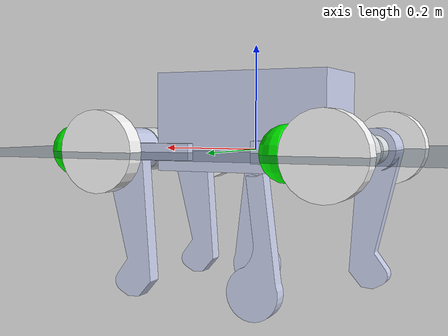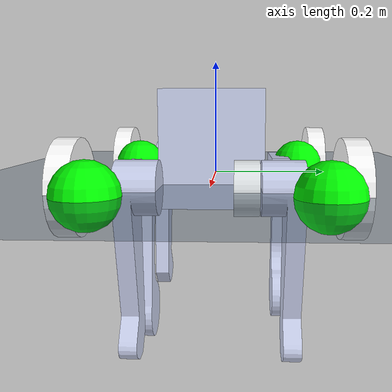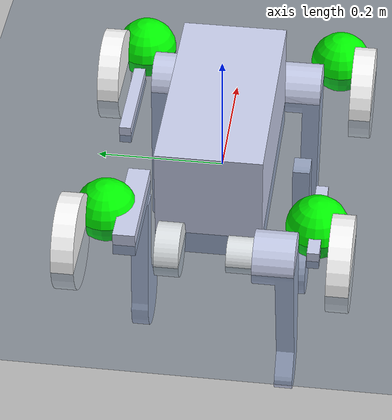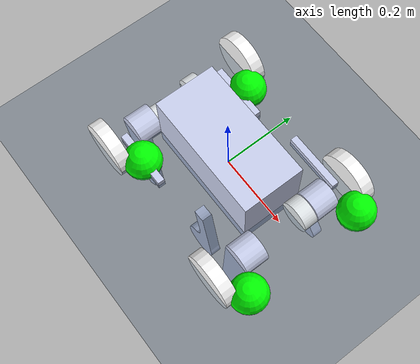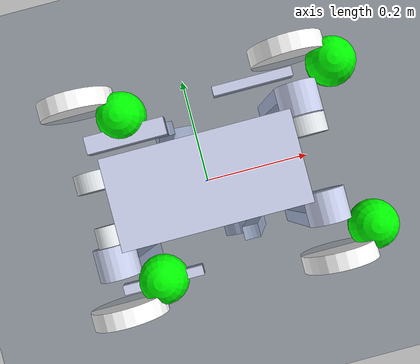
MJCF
<mujoco model="robotsky_wq">
  <compiler angle="radian" meshdir="../meshes/" autolimits="true" />
  <option timestep="0.005" integrator="implicit" />

  <asset>
    <mesh name="base_link" file="base_link.STL"/>
    <mesh name="RF_Roll_Link" file="RF_Roll_Link.STL"/>
    <mesh name="RF_Hip_Link" file="RF_Hip_Link.STL"/>
    <mesh name="RF_Knee_Link" file="RF_Knee_Link.STL"/>
    <mesh name="RF_Wheel_Link" file="RF_Wheel_Link.STL"/>
    <mesh name="LF_Roll_Link" file="LF_Roll_Link.STL"/>
    <mesh name="LF_Hip_Link" file="LF_Hip_Link.STL"/>
    <mesh name="LF_Knee_Link" file="LF_Knee_Link.STL"/>
    <mesh name="LF_Wheel_Link" file="LF_Wheel_Link.STL"/>
    <mesh name="RB_Roll_Link" file="RB_Roll_Link.STL"/>
    <mesh name="RB_Hip_Link" file="RB_Hip_Link.STL"/>
    <mesh name="RB_Knee_Link" file="RB_Knee_Link.STL"/>
    <mesh name="RB_Wheel_Link" file="RB_Wheel_Link.STL"/>
    <mesh name="LB_Roll_Link" file="LB_Roll_Link.STL"/>
    <mesh name="LB_Hip_Link" file="LB_Hip_Link.STL"/>
    <mesh name="LB_Knee_Link" file="LB_Knee_Link.STL"/>
    <mesh name="LB_Wheel_Link" file="LB_Wheel_Link.STL"/>

    <texture name="grid" type="2d" builtin="checker" rgb1=".1 .2 .3" rgb2=".2 .3 .4" width="300" height="300" />
    <material name="grid" texture="grid" texrepeat="8 8" reflectance=".1" />
  </asset>

  <default>
    <geom contype="0" conaffinity="0" />
  </default>

  <worldbody>
    <light name="top" pos="0 0 10" castshadow="false" />
    <geom size="10 10 .01" type="plane" pos="0 0 0" material="grid" contype="1" conaffinity="1" friction="1.0 0.1 0.001" />

    <body name="base_link">
      <joint name="base_link_free_joint" type="free"/>

      <inertial pos="0 0 0.0" quat="0.0 0.0 0.0 1.0" mass="11.2741" diaginertia="0.155787 0.147821 0.0643368"/>
      <geom type="mesh" rgba="0.796078 0.823529 0.937255 1" mesh="base_link" contype="1" conaffinity="1" />
      <site name="imu" pos="0 0 0" />

      <body name="RF_Roll_Link">
        <inertial pos="0.213 -0.0605 0" quat="0.707107 0.707107 0 0" mass="0.351377" diaginertia="0.000147513 0.000147513 0.000142703"/>
        <joint name="RF_Roll_Joint" pos="0.213 -0.0605 0" axis="1 0 0" range="-0.5 1.57" actuatorfrcrange="-7 7" armature="0.02"/>
        <geom type="mesh" rgba="0.898039 0.917647 0.929412 1" mesh="RF_Roll_Link"/>
        <body name="RF_Hip_Link" pos="0.213 -0.06 0">
          <inertial pos="-0.08 -0.0655 0" quat="0.5 0.5 0.5 0.5" mass="0.2576" diaginertia="0.000583893 0.000575843 6.06433e-05"/>
          <joint name="RF_Hip_Joint" pos="0 0 0" axis="0 1 0" range="-3.14 0.01" actuatorfrcrange="-14 14" armature="0.02"/>
          <geom type="mesh" rgba="0.796078 0.823529 0.937255 1" mesh="RF_Hip_Link"/>
          <body name="RF_Knee_Link" pos="-0.16 -0.0655 0">
            <inertial pos="0.08 -0.04 0" quat="0.5 0.5 0.5 0.5" mass="0.10488" diaginertia="0.00023161 0.000226899 1.10211e-05"/>
            <joint name="RF_Knee_Joint" pos="0 0 0" axis="0 1 0" range="-0.01 3.14" actuatorfrcrange="-17 17" armature="0.02"/>
            <geom type="mesh" rgba="0.796078 0.823529 0.937255 1" mesh="RF_Knee_Link"/>
            <body name="RF_Wheel_Link" pos="0.16 -0.04 0">
              <inertial pos="0 -0.043 0" quat="0.707107 0 0 0.707107" mass="0.630871" diaginertia="0.00177432 0.000951564 0.000951564"/>
              <joint name="RF_Wheel_Joint" pos="0 0 0" axis="0 1 0" range="-10000000 10000000" actuatorfrcrange="-7 7" armature="0.02"/>
              <geom type="cylinder" pos="0 -0.043 0" size="0.075 0.0175" quat="0.707107 0.707107 0 0" rgba="1 1 1 1" contype="1" conaffinity="1" priority="1" condim="6" friction="1.5 0.05 0.0002" solimp="0.9 0.95 0.001" solref="0.02 0.7" />
              <geom type="sphere" pos="0.08 0 0" size="0.05" rgba="0 1 0 1" contype="0" conaffinity="0" />
            </body>
          </body>
        </body>
      </body>
      <body name="LF_Roll_Link" pos="0.213 0.06 0">
        <inertial pos="0 0.0005 0" quat="0.707107 0.707107 0 0" mass="0.351377" diaginertia="0.000147513 0.000147513 0.000142703"/>
        <joint name="LF_Roll_Joint" pos="0 0 0" axis="1 0 0" range="-1.57 0.5" actuatorfrcrange="-7 7" armature="0.02" />
        <geom type="mesh" rgba="0.898039 0.917647 0.929412 1" mesh="LF_Roll_Link"/>
        <body name="LF_Hip_Link">
          <inertial pos="-0.08 0.0655 0" quat="0.5 0.5 0.5 0.5" mass="0.2576" diaginertia="0.000583893 0.000575843 6.06433e-05"/>
          <joint name="LF_Hip_Joint" pos="0 0 0" axis="0 1 0" range="-3.14 0.01" actuatorfrcrange="-14 14" armature="0.02"/>
          <geom type="mesh" rgba="0.796078 0.823529 0.937255 1" mesh="LF_Hip_Link"/>
          <body name="LF_Knee_Link" pos="-0.16 0.0655 0">
            <inertial pos="0.08 0.04 0" quat="0.5 0.5 0.5 0.5" mass="0.10488" diaginertia="0.00023161 0.000226899 1.10211e-05"/>
            <joint name="LF_Knee_Joint" pos="0 0 0" axis="0 1 0" range="-0.01 3.14" actuatorfrcrange="-17 17" armature="0.02"/>
            <geom type="mesh" rgba="0.796078 0.823529 0.937255 1" mesh="LF_Knee_Link"/>
            <body name="LF_Wheel_Link" pos="0.16 0.04 0">
              <inertial pos="0 0.043 0" quat="0.707107 0 0 0.707107" mass="0.630871" diaginertia="0.00177432 0.000951564 0.000951564"/>
              <joint name="LF_Wheel_Joint" pos="0 0 0" axis="0 1 0" range="-10000000 10000000" actuatorfrcrange="-7 7" armature="0.02"/>
              <geom type="cylinder" pos="0 0.043 0" size="0.075 0.0175" quat="0.707107 0.707107 0 0" rgba="1 1 1 1" contype="1" conaffinity="1" priority="1" condim="6" friction="1.5 0.05 0.0002" solimp="0.9 0.95 0.001" solref="0.02 0.7" />
              <geom type="sphere" pos="0.08 0 0" size="0.05" rgba="0 1 0 1" contype="0" conaffinity="0" />
            </body>
          </body>
        </body>
      </body>
      <body name="RB_Roll_Link" pos="-0.213 -0.06 0">
        <inertial pos="0 -0.0005 0" quat="0.707107 0.707107 0 0" mass="0.351377" diaginertia="0.000147513 0.000147513 0.000142703"/>
        <joint name="RB_Roll_Joint" pos="0 0 0" axis="1 0 0" range="-0.5 1.57" actuatorfrcrange="-7 7" armature="0.02"/>
        <geom type="mesh" rgba="0.898039 0.917647 0.929412 1" mesh="RB_Roll_Link"/>
        <body name="RB_Hip_Link">
          <inertial pos="0.08 -0.0655 0" quat="0.5 0.5 0.5 0.5" mass="0.2576" diaginertia="0.000583893 0.000575843 6.06433e-05"/>
          <joint name="RB_Hip_Joint" pos="0 0 0" axis="0 1 0" range="-0.01 3.14" actuatorfrcrange="-14 14" armature="0.02"/>
          <geom type="mesh" rgba="0.796078 0.823529 0.937255 1" mesh="RB_Hip_Link"/>
          <body name="RB_Knee_Link" pos="0.16 -0.0655 0">
            <inertial pos="-0.08 -0.04 0" quat="0.5 0.5 0.5 0.5" mass="0.10488" diaginertia="0.00023161 0.000226899 1.10211e-05"/>
            <joint name="RB_Knee_Joint" pos="0 0 0" axis="0 1 0" range="-3.14 0.01" actuatorfrcrange="-17 17" armature="0.02"/>
            <geom type="mesh" rgba="0.796078 0.823529 0.937255 1" mesh="RB_Knee_Link"/>
            <body name="RB_Wheel_Link" pos="-0.16 -0.04 0">
              <inertial pos="0 -0.043 0" quat="0.707107 0 0 0.707107" mass="0.630871" diaginertia="0.00177432 0.000951564 0.000951564"/>
              <joint name="RB_Wheel_Joint" pos="0 0 0" axis="0 1 0" range="-10000000 10000000" actuatorfrcrange="-7 7" armature="0.02"/>
              <geom type="cylinder" pos="0 -0.043 0" size="0.075 0.0175" quat="0.707107 0.707107 0 0" rgba="1 1 1 1" contype="1" conaffinity="1" priority="1" condim="6" friction="1.5 0.05 0.0002" solimp="0.9 0.95 0.001" solref="0.02 0.7" />
              <geom type="sphere" pos="0.08 0 0" size="0.05" rgba="0 1 0 1" contype="0" conaffinity="0" />
            </body>
          </body>
        </body>
      </body>
      <body name="LB_Roll_Link" pos="-0.213 0.06 0">
        <inertial pos="0 0.0005 0" quat="0.707107 0.707107 0 0" mass="0.351377" diaginertia="0.000147513 0.000147513 0.000142703"/>
        <joint name="LB_Roll_Joint" pos="0 0 0" axis="1 0 0" range="-1.57 0.5" actuatorfrcrange="-7 7" armature="0.02"/>
        <geom type="mesh" rgba="0.898039 0.917647 0.929412 1" mesh="LB_Roll_Link"/>
        <body name="LB_Hip_Link">
          <inertial pos="0.08 0.0655 0" quat="0.5 0.5 0.5 0.5" mass="0.2576" diaginertia="0.000583893 0.000575843 6.06433e-05"/>
          <joint name="LB_Hip_Joint" pos="0 0 0" axis="0 1 0" range="-0.01 1.57" actuatorfrcrange="-14 14" armature="0.02"/>
          <geom type="mesh" rgba="0.796078 0.823529 0.937255 1" mesh="LB_Hip_Link"/>
          <body name="LB_Knee_Link" pos="0.16 0.0655 0">
            <inertial pos="-0.08 0.04 0" quat="0.5 0.5 0.5 0.5" mass="0.10488" diaginertia="0.00023161 0.000226899 1.10211e-05"/>
            <joint name="LB_Knee_Joint" pos="0 0 0" axis="0 1 0" range="-3.14 0.01" actuatorfrcrange="-17 17" armature="0.02"/>
            <geom type="mesh" rgba="0.796078 0.823529 0.937255 1" mesh="LB_Knee_Link"/>
            <body name="LB_Wheel_Link" pos="-0.16 0.04 0">
              <inertial pos="0 0.043 0" quat="0.707107 0 0 0.707107" mass="0.630871" diaginertia="0.00177432 0.000951564 0.000951564"/>
              <joint name="LB_Wheel_Joint" pos="0 0 0" axis="0 1 0" range="-10000000 10000000" actuatorfrcrange="-7 7" armature="0.02"/>
              <geom type="cylinder" pos="0 0.043 0" size="0.075 0.0175" quat="0.707107 0.707107 0 0" rgba="1 1 1 1" contype="1" conaffinity="1" priority="1" condim="6" friction="1.5 0.05 0.0002" solimp="0.9 0.95 0.001" solref="0.02 0.7" />
              <geom type="sphere" pos="0.08 0 0" size="0.05" rgba="0 1 0 1" contype="0" conaffinity="0" />
            </body>
          </body>
        </body>
      </body>
    </body>
  </worldbody>

  <actuator>

    <position name="RF_Roll" joint="RF_Roll_Joint" kp="20.0" kv="1.0" forcerange="-5 5" forcelimited="true" />
    <position name="RF_Hip" joint="RF_Hip_Joint" kp="20.0" kv="1.0" forcerange="-8 8" forcelimited="true" />
    <position name="RF_Knee" joint="RF_Knee_Joint" kp="40.0" kv="1.0" forcerange="-12 12" forcelimited="true" />
    <velocity name="RF_Wheel" joint="RF_Wheel_Joint" kv="1.0" forcerange="-5 5" forcelimited="true" />

    <position name="LF_Roll" joint="LF_Roll_Joint" kp="20.0" kv="1.0" forcerange="-5 5" forcelimited="true" />
    <position name="LF_Hip" joint="LF_Hip_Joint" kp="20.0" kv="1.0" forcerange="-8 8" forcelimited="true" />
    <position name="LF_Knee" joint="LF_Knee_Joint" kp="40.0" kv="1.0" forcerange="-12 12" forcelimited="true" />
    <velocity name="LF_Wheel" joint="LF_Wheel_Joint" kv="1.0" forcerange="-5 5" forcelimited="true" />

    <position name="RB_Roll" joint="RB_Roll_Joint" kp="20.0" kv="1.0" forcerange="-5 5" forcelimited="true" />
    <position name="RB_Hip" joint="RB_Hip_Joint" kp="20.0" kv="1.0" forcerange="-8 8" forcelimited="true" />
    <position name="RB_Knee" joint="RB_Knee_Joint" kp="40.0" kv="1.0" forcerange="-12 12" forcelimited="true" />
    <velocity name="RB_Wheel" joint="RB_Wheel_Joint" kv="1.0" forcerange="-5 5" forcelimited="true" />

    <position name="LB_Roll" joint="LB_Roll_Joint" kp="20.0" kv="1.0" forcerange="-5 5" forcelimited="true" />
    <position name="LB_Hip" joint="LB_Hip_Joint" kp="20.0" kv="1.0" forcerange="-8 8" forcelimited="true" />
    <position name="LB_Knee" joint="LB_Knee_Joint" kp="40.0" kv="1.0" forcerange="-12 12" forcelimited="true" />
    <velocity name="LB_Wheel" joint="LB_Wheel_Joint" kv="1.0" forcerange="-5 5" forcelimited="true" />
  </actuator>

  <sensor>
    <jointpos name="RF_Roll_pos" joint="RF_Roll_Joint" />
    <jointpos name="RF_Hip_pos" joint="RF_Hip_Joint" />
    <jointpos name="RF_Knee_pos" joint="RF_Knee_Joint" />
    <jointpos name="RF_Wheel_pos" joint="RF_Wheel_Joint" />
    <jointpos name="LF_Roll_pos" joint="LF_Roll_Joint" />
    <jointpos name="LF_Hip_pos" joint="LF_Hip_Joint" />
    <jointpos name="LF_Knee_pos" joint="LF_Knee_Joint" />
    <jointpos name="LF_Wheel_pos" joint="LF_Wheel_Joint" />
    <jointpos name="RB_Roll_pos" joint="RB_Roll_Joint" />
    <jointpos name="RB_Hip_pos" joint="RB_Hip_Joint" />
    <jointpos name="RB_Knee_pos" joint="RB_Knee_Joint" />
    <jointpos name="RB_Wheel_pos" joint="RB_Wheel_Joint" />
    <jointpos name="LB_Roll_pos" joint="LB_Roll_Joint" />
    <jointpos name="LB_Hip_pos" joint="LB_Hip_Joint" />
    <jointpos name="LB_Knee_pos" joint="LB_Knee_Joint" />
    <jointpos name="LB_Wheel_pos" joint="LB_Wheel_Joint" />

    <jointvel name="RF_Roll_vel" joint="RF_Roll_Joint" />
    <jointvel name="RF_Hip_vel" joint="RF_Hip_Joint" />
    <jointvel name="RF_Knee_vel" joint="RF_Knee_Joint" />
    <jointvel name="RF_Wheel_vel" joint="RF_Wheel_Joint" />
    <jointvel name="LF_Roll_vel" joint="LF_Roll_Joint" />
    <jointvel name="LF_Hip_vel" joint="LF_Hip_Joint" />
    <jointvel name="LF_Knee_vel" joint="LF_Knee_Joint" />
    <jointvel name="LF_Wheel_vel" joint="LF_Wheel_Joint" />
    <jointvel name="RB_Roll_vel" joint="RB_Roll_Joint" />
    <jointvel name="RB_Hip_vel" joint="RB_Hip_Joint" />
    <jointvel name="RB_Knee_vel" joint="RB_Knee_Joint" />
    <jointvel name="RB_Wheel_vel" joint="RB_Wheel_Joint" />
    <jointvel name="LB_Roll_vel" joint="LB_Roll_Joint" />
    <jointvel name="LB_Hip_vel" joint="LB_Hip_Joint" />
    <jointvel name="LB_Knee_vel" joint="LB_Knee_Joint" />
    <jointvel name="LB_Wheel_vel" joint="LB_Wheel_Joint" />

    <gyro name="angular-velocity" site="imu" />
    <framequat name="orientation" objtype="site" objname="imu" />

    <framepos name="position" objtype="site" objname="imu" />
  </sensor>

  <keyframe>
    <key name="home" qpos="0 0 0.35 1 0 0 0 0.1 -0.5 1.0 0.0 -0.1 -0.5 1.0 0.0 0.1 0.5 -1.0 0.0 -0.1 0.5 -1.0 0.0" ctrl="0 0 0 0 0 0 0 0 0 0 0 0 0 0 0 0" />
  </keyframe>
</mujoco>
